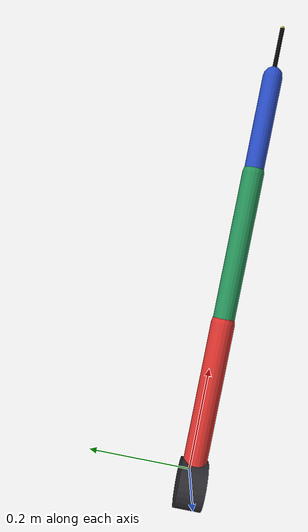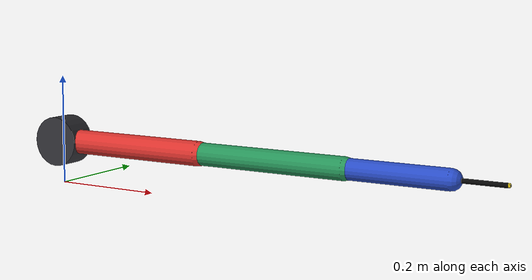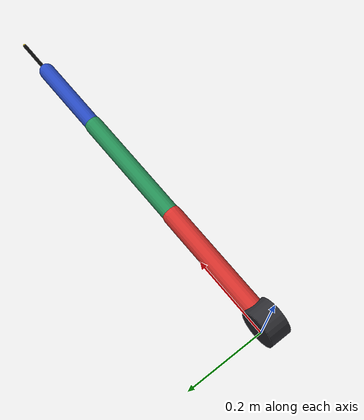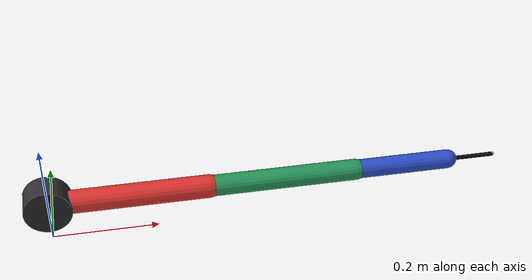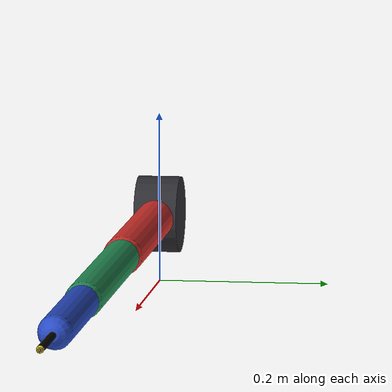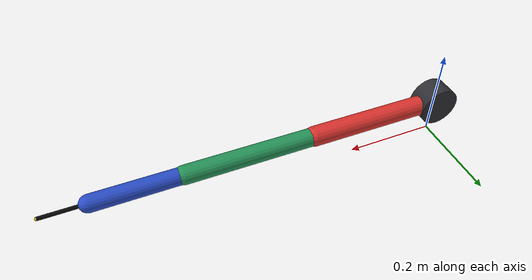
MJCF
<mujoco model="jrf_3r_robot_component">
    <compiler angle="radian" autolimits="true"/>

    <default>
        <joint damping="5.0" armature="0.05"/>
        <geom density="700" condim="3" friction="1.0 0.015 0.015" solref="0.012 1" solimp="0.86 0.995 0.001"/>
        <position kp="450" kv="45" ctrlrange="-3.14159 3.14159" forcerange="-350 350"/>
    </default>

    <worldbody>
        <!-- Component copy of the arm used in scene.xml; kept separate for inspection. -->
        <body name="base" pos="0 0 0.08">
            <geom name="base_mount" type="cylinder" size="0.045 0.025" axisangle="1 0 0 1.5707963" rgba="0.18 0.18 0.20 1" contype="0" conaffinity="0"/>
            <body name="link1" pos="0 0 0">
                <joint name="joint1" type="hinge" axis="0 -1 0" range="-2.85 2.85"/>
                <geom name="link1_geom" type="capsule" fromto="0 0 0 0.30 0 0" size="0.022" rgba="0.86 0.20 0.18 1" contype="0" conaffinity="0"/>
                <body name="link2" pos="0.30 0 0">
                    <joint name="joint2" type="hinge" axis="0 -1 0" range="-2.65 2.65"/>
                    <geom name="link2_geom" type="capsule" fromto="0 0 0 0.28 0 0" size="0.020" rgba="0.15 0.58 0.35 1" contype="0" conaffinity="0"/>
                    <body name="link3" pos="0.28 0 0">
                        <joint name="joint3" type="hinge" axis="0 -1 0" range="-2.65 2.65"/>
                        <geom name="link3_geom" type="capsule" fromto="0 0 0 0.18 0 0" size="0.018" rgba="0.16 0.30 0.78 1" contype="0" conaffinity="0"/>
                        <geom name="pen_shaft_geom" type="capsule" fromto="0.18 0 0 0.27 0 0" size="0.004"
                              density="1200" rgba="0.03 0.03 0.03 1" contype="0" conaffinity="0"/>
                        <geom name="pen_geom" type="sphere" pos="0.27 0 0" size="0.002" density="1200"
                              rgba="0.01 0.01 0.01 1" contype="1" conaffinity="1" margin="0.0005"/>
                        <site name="pen_tip" pos="0.27 0 0" size="0.004" rgba="1 0.85 0.05 1"/>
                    </body>
                </body>
            </body>
        </body>
    </worldbody>

    <actuator>
        <position name="act_joint1" joint="joint1"/>
        <position name="act_joint2" joint="joint2"/>
        <position name="act_joint3" joint="joint3"/>
    </actuator>
</mujoco>
